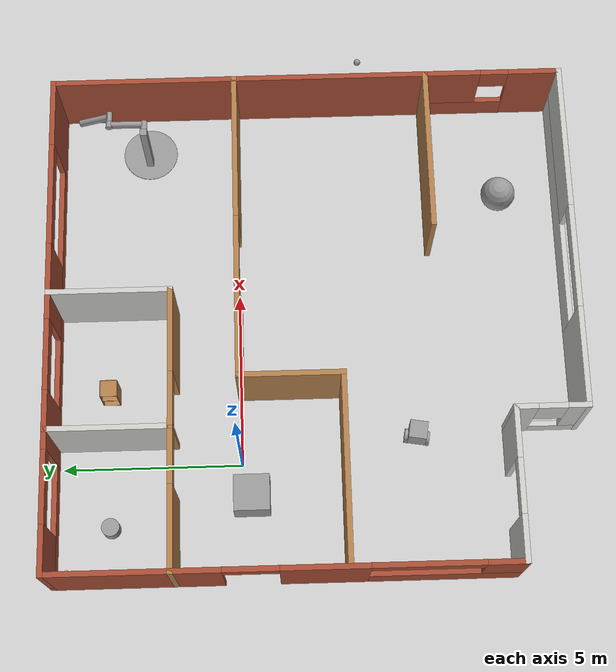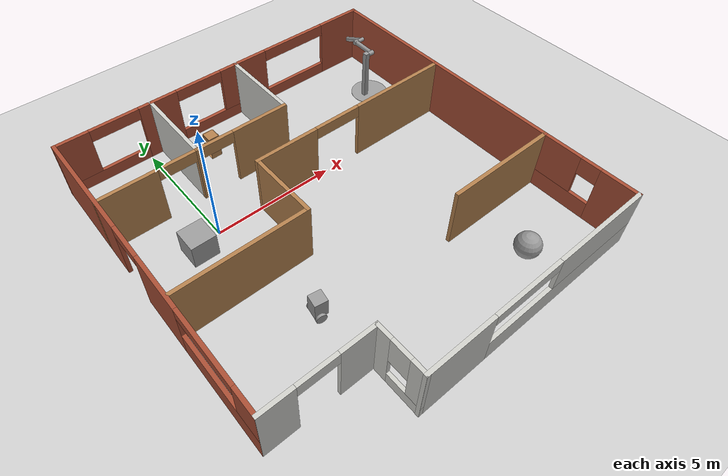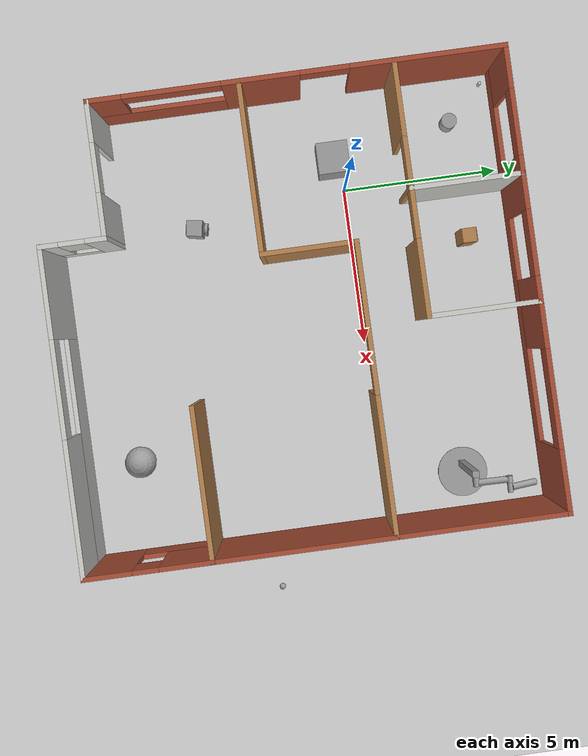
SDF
<sdf version="1.6">
 <world name="default">
  <plugin name="hello" filename="libhello.so"/>
  <light name="sun" type="directional">
   <pose>0 0 10 0 -0 0</pose>
   <diffuse>0.8 0.8 0.8 1</diffuse>
   <specular>0.1 0.1 0.1 1</specular>
   <attenuation>
    <range>1000</range>
    <constant>0.9</constant>
    <linear>0.01</linear>
    <quadratic>0.001</quadratic>
   </attenuation>
   <direction>-0.5 0.5 -1</direction>
  </light>
  <model name="ground_plane">
   <static>1</static>
   <link name="link">
    <collision name="collision">
     <geometry><plane><normal>0 0 1</normal><size>100 100</size></plane></geometry>
     <surface><friction><ode><mu>100</mu><mu2>50</mu2></ode></friction></surface>
    </collision>
    <visual name="visual">
     <cast_shadows>0</cast_shadows>
     <geometry><plane><normal>0 0 1</normal><size>100 100</size></plane></geometry>
     <material>
      <script><uri>file://media/materials/scripts/gazebo.material</uri><name>Gazebo/Grey</name></script>
     </material>
    </visual>
   </link>
  </model>
  <gravity>0 0 -9.8</gravity>
  <magnetic_field>6e-06 2.3e-05 -4.2e-05</magnetic_field>
  <atmosphere type="adiabatic"/>
  <physics name="default_physics" default="0" type="ode">
   <max_step_size>0.001</max_step_size>
   <real_time_factor>1</real_time_factor>
   <real_time_update_rate>1000</real_time_update_rate>
  </physics>
  <scene><ambient>0.4 0.4 0.4 1</ambient><background>0.7 0.7 0.7 1</background><shadows>1</shadows></scene>
  <spherical_coordinates>
   <surface_model>EARTH_WGS84</surface_model>
   <latitude_deg>0</latitude_deg>
   <longitude_deg>0</longitude_deg>
   <elevation>0</elevation>
   <heading_deg>0</heading_deg>
  </spherical_coordinates>
  <model name="mybuilding">
   <pose>3.78931 -2.0956 0 0 -0 0</pose>
   <link name="Wall_100">
    <pose>-4.97405 -5.32475 0 0 -0 0</pose>
    <visual name="Wall_100_Visual_0">
     <pose>-1.47284 0 1.25 0 -0 0</pose>
     <geometry><box><size>1.30431 0.15 2.5</size></box></geometry>
     <material>
      <script><uri>file://media/materials/scripts/gazebo.material</uri><name>Gazebo/CeilingTiled</name></script>
      <ambient>0.435294 0.796078 0.67451 1</ambient>
     </material>
    </visual>
    <collision name="Wall_100_Collision_0">
     <geometry><box><size>1.30431 0.15 2.5</size></box></geometry>
     <pose>-1.47284 0 1.25 0 -0 0</pose>
    </collision>
    <visual name="Wall_100_Visual_1">
     <pose>1.40216 0 1.25 0 -0 0</pose>
     <geometry><box><size>1.44569 0.15 2.5</size></box></geometry>
     <material>
      <script><uri>file://media/materials/scripts/gazebo.material</uri><name>Gazebo/CeilingTiled</name></script>
      <ambient>0.435294 0.796078 0.67451 1</ambient>
     </material>
    </visual>
    <collision name="Wall_100_Collision_1">
     <geometry><box><size>1.44569 0.15 2.5</size></box></geometry>
     <pose>1.40216 0 1.25 0 -0 0</pose>
    </collision>
    <visual name="Wall_100_Visual_2">
     <pose>-0.07069 0 2.25 0 -0 0</pose>
     <geometry><box><size>1.5 0.15 0.5</size></box></geometry>
     <material>
      <script><uri>file://media/materials/scripts/gazebo.material</uri><name>Gazebo/CeilingTiled</name></script>
      <ambient>0.435294 0.796078 0.67451 1</ambient>
     </material>
    </visual>
    <collision name="Wall_100_Collision_2">
     <geometry><box><size>1.5 0.15 0.5</size></box></geometry>
     <pose>-0.07069 0 2.25 0 -0 0</pose>
    </collision>
   </link>
   <link name="Wall_102">
    <pose>-2.91535 -6.30192 0 0 0 -1.5708</pose>
    <visual name="Wall_102_Visual_0">
     <pose>-0.715877 0 1.25 0 -0 0</pose>
     <geometry><box><size>0.672904 0.15 2.5</size></box></geometry>
     <material>
      <script><uri>file://media/materials/scripts/gazebo.material</uri><name>Gazebo/CeilingTiled</name></script>
      <ambient>1 0.764706 0.305882 1</ambient>
     </material>
    </visual>
    <collision name="Wall_102_Collision_0">
     <geometry><box><size>0.672904 0.15 2.5</size></box></geometry>
     <pose>-0.715877 0 1.25 0 -0 0</pose>
    </collision>
    <visual name="Wall_102_Visual_1">
     <pose>0.336452 0 0.25 0 -0 0</pose>
     <geometry><box><size>1.43175 0.15 0.5</size></box></geometry>
     <material>
      <script><uri>file://media/materials/scripts/gazebo.material</uri><name>Gazebo/CeilingTiled</name></script>
      <ambient>1 0.764706 0.305882 1</ambient>
     </material>
    </visual>
    <collision name="Wall_102_Collision_1">
     <geometry><box><size>1.43175 0.15 0.5</size></box></geometry>
     <pose>0.336452 0 0.25 0 -0 0</pose>
    </collision>
    <visual name="Wall_102_Visual_2">
     <pose>0.736452 0 1.5 0 -0 0</pose>
     <geometry><box><size>0.631753 0.15 2</size></box></geometry>
     <material>
      <script><uri>file://media/materials/scripts/gazebo.material</uri><name>Gazebo/CeilingTiled</name></script>
      <ambient>1 0.764706 0.305882 1</ambient>
     </material>
    </visual>
    <collision name="Wall_102_Collision_2">
     <geometry><box><size>0.631753 0.15 2</size></box></geometry>
     <pose>0.736452 0 1.5 0 -0 0</pose>
    </collision>
    <visual name="Wall_102_Visual_3">
     <pose>0.020576 0 1.9 0 -0 0</pose>
     <geometry><box><size>0.8 0.15 1.2</size></box></geometry>
     <material>
      <script><uri>file://media/materials/scripts/gazebo.material</uri><name>Gazebo/CeilingTiled</name></script>
      <ambient>1 0.764706 0.305882 1</ambient>
     </material>
    </visual>
    <collision name="Wall_102_Collision_3">
     <geometry><box><size>0.8 0.15 1.2</size></box></geometry>
     <pose>0.020576 0 1.9 0 -0 0</pose>
    </collision>
   </link>
   <link name="Wall_104">
    <pose>2.05282 -7.27925 0 0 0 -3.1e-05</pose>
    <visual name="Wall_104_Visual_0">
     <pose>-3.62649 0 1.25 0 -0 0</pose>
     <geometry><box><size>2.85075 0.15 2.5</size></box></geometry>
     <material>
      <script><uri>file://media/materials/scripts/gazebo.material</uri><name>Gazebo/CeilingTiled</name></script>
      <ambient>0.435294 0.796078 0.67451 1</ambient>
     </material>
    </visual>
    <collision name="Wall_104_Collision_0">
     <geometry><box><size>2.85075 0.15 2.5</size></box></geometry>
     <pose>-3.62649 0 1.25 0 -0 0</pose>
    </collision>
    <visual name="Wall_104_Visual_1">
     <pose>1.42538 0 0.5 0 -0 0</pose>
     <geometry><box><size>7.25299 0.15 1</size></box></geometry>
     <material>
      <script><uri>file://media/materials/scripts/gazebo.material</uri><name>Gazebo/CeilingTiled</name></script>
      <ambient>0.435294 0.796078 0.67451 1</ambient>
     </material>
    </visual>
    <collision name="Wall_104_Collision_1">
     <geometry><box><size>7.25299 0.15 1</size></box></geometry>
     <pose>1.42538 0 0.5 0 -0 0</pose>
    </collision>
    <visual name="Wall_104_Visual_2">
     <pose>2.92537 0 1.75 0 -0 0</pose>
     <geometry><box><size>4.25299 0.15 1.5</size></box></geometry>
     <material>
      <script><uri>file://media/materials/scripts/gazebo.material</uri><name>Gazebo/CeilingTiled</name></script>
      <ambient>0.435294 0.796078 0.67451 1</ambient>
     </material>
    </visual>
    <collision name="Wall_104_Collision_2">
     <geometry><box><size>4.25299 0.15 1.5</size></box></geometry>
     <pose>2.92537 0 1.75 0 -0 0</pose>
    </collision>
    <visual name="Wall_104_Visual_3">
     <pose>-0.70112 0 2.25 0 -0 0</pose>
     <geometry><box><size>3 0.15 0.5</size></box></geometry>
     <material>
      <script><uri>file://media/materials/scripts/gazebo.material</uri><name>Gazebo/CeilingTiled</name></script>
      <ambient>0.435294 0.796078 0.67451 1</ambient>
     </material>
    </visual>
    <collision name="Wall_104_Collision_3">
     <geometry><box><size>3 0.15 0.5</size></box></geometry>
     <pose>-0.70112 0 2.25 0 -0 0</pose>
    </collision>
   </link>
   <link name="Wall_106">
    <pose>7.02969 -5.3499 0 0 -0 1.5708</pose>
    <visual name="Wall_106_Visual_0">
     <pose>-1.23742 0 1.25 0 -0 0</pose>
     <geometry><box><size>1.53383 0.15 2.5</size></box></geometry>
     <material>
      <script><uri>file://media/materials/scripts/gazebo.material</uri><name>Gazebo/Bricks</name></script>
      <ambient>1 1 1 1</ambient>
     </material>
    </visual>
    <collision name="Wall_106_Collision_0">
     <geometry><box><size>1.53383 0.15 2.5</size></box></geometry>
     <pose>-1.23742 0 1.25 0 -0 0</pose>
    </collision>
    <visual name="Wall_106_Visual_1">
     <pose>0.766915 0 0.375 0 -0 0</pose>
     <geometry><box><size>2.47484 0.15 0.75</size></box></geometry>
     <material>
      <script><uri>file://media/materials/scripts/gazebo.material</uri><name>Gazebo/Bricks</name></script>
      <ambient>1 1 1 1</ambient>
     </material>
    </visual>
    <collision name="Wall_106_Collision_1">
     <geometry><box><size>2.47484 0.15 0.75</size></box></geometry>
     <pose>0.766915 0 0.375 0 -0 0</pose>
    </collision>
    <visual name="Wall_106_Visual_2">
     <pose>1.16691 0 1.625 0 -0 0</pose>
     <geometry><box><size>1.67484 0.15 1.75</size></box></geometry>
     <material>
      <script><uri>file://media/materials/scripts/gazebo.material</uri><name>Gazebo/Bricks</name></script>
      <ambient>1 1 1 1</ambient>
     </material>
    </visual>
    <collision name="Wall_106_Collision_2">
     <geometry><box><size>1.67484 0.15 1.75</size></box></geometry>
     <pose>1.16691 0 1.625 0 -0 0</pose>
    </collision>
    <visual name="Wall_106_Visual_3">
     <pose>-0.070504 0 2.125 0 -0 0</pose>
     <geometry><box><size>0.8 0.15 0.75</size></box></geometry>
     <material>
      <script><uri>file://media/materials/scripts/gazebo.material</uri><name>Gazebo/Bricks</name></script>
      <ambient>1 1 1 1</ambient>
     </material>
    </visual>
    <collision name="Wall_106_Collision_3">
     <geometry><box><size>0.8 0.15 0.75</size></box></geometry>
     <pose>-0.070504 0 2.125 0 -0 0</pose>
    </collision>
   </link>
   <link name="Wall_108">
    <collision name="Wall_108_Collision">
     <geometry><box><size>4.75 0.15 2.5</size></box></geometry>
     <pose>0 0 1.25 0 -0 0</pose>
    </collision>
    <visual name="Wall_108_Visual">
     <pose>0 0 1.25 0 -0 0</pose>
     <geometry><box><size>4.75 0.15 2.5</size></box></geometry>
     <material>
      <script><uri>file://media/materials/scripts/gazebo.material</uri><name>Gazebo/Wood</name></script>
      <ambient>1 1 0.498039 1</ambient>
     </material>
    </visual>
    <pose>4.72945 -3.42056 0 0 0 -3.14152</pose>
   </link>
   <link name="Wall_110">
    <collision name="Wall_110_Collision">
     <geometry><box><size>5.666 0.15 2.5</size></box></geometry>
     <pose>0 0 1.25 0 -0 0</pose>
    </collision>
    <visual name="Wall_110_Visual">
     <pose>0 0 1.25 0 -0 0</pose>
     <geometry><box><size>5.666 0.15 2.5</size></box></geometry>
     <material>
      <script><uri>file://media/materials/scripts/gazebo.material</uri><name>Gazebo/Bricks</name></script>
      <ambient>1 1 1 1</ambient>
     </material>
    </visual>
    <pose>7.02969 -0.662398 0 0 -0 1.5708</pose>
   </link>
   <link name="Wall_112">
    <pose>2.60469 2.0956 0 0 -0 3.14159</pose>
    <visual name="Wall_112_Visual_0">
     <pose>-2.34058 0 1.25 0 -0 0</pose>
     <geometry><box><size>4.31883 0.15 2.5</size></box></geometry>
     <material>
      <script><uri>file://media/materials/scripts/gazebo.material</uri><name>Gazebo/Wood</name></script>
      <ambient>1 1 0.498039 1</ambient>
     </material>
    </visual>
    <collision name="Wall_112_Collision_0">
     <geometry><box><size>4.31883 0.15 2.5</size></box></geometry>
     <pose>-2.34058 0 1.25 0 -0 0</pose>
    </collision>
    <visual name="Wall_112_Visual_1">
     <pose>3.15942 0 1.25 0 -0 0</pose>
     <geometry><box><size>2.68117 0.15 2.5</size></box></geometry>
     <material>
      <script><uri>file://media/materials/scripts/gazebo.material</uri><name>Gazebo/Wood</name></script>
      <ambient>1 1 0.498039 1</ambient>
     </material>
    </visual>
    <collision name="Wall_112_Collision_1">
     <geometry><box><size>2.68117 0.15 2.5</size></box></geometry>
     <pose>3.15942 0 1.25 0 -0 0</pose>
    </collision>
    <visual name="Wall_112_Visual_2">
     <pose>0.81883 0 2.25 0 -0 0</pose>
     <geometry><box><size>2 0.15 0.5</size></box></geometry>
     <material>
      <script><uri>file://media/materials/scripts/gazebo.material</uri><name>Gazebo/Wood</name></script>
      <ambient>1 1 0.498039 1</ambient>
     </material>
    </visual>
    <collision name="Wall_112_Collision_2">
     <geometry><box><size>2 0.15 0.5</size></box></geometry>
     <pose>0.81883 0 2.25 0 -0 0</pose>
    </collision>
   </link>
   <link name="Wall_114">
    <collision name="Wall_114_Collision">
     <geometry><box><size>5.33367 0.15 2.5</size></box></geometry>
     <pose>0 0 1.25 0 -0 0</pose>
    </collision>
    <visual name="Wall_114_Visual">
     <pose>0 0 1.25 0 -0 0</pose>
     <geometry><box><size>5.33367 0.15 2.5</size></box></geometry>
     <material>
      <script><uri>file://media/materials/scripts/gazebo.material</uri><name>Gazebo/Bricks</name></script>
      <ambient>1 1 1 1</ambient>
     </material>
    </visual>
    <pose>7.02493 4.68743 0 0 -0 1.57263</pose>
   </link>
   <link name="Wall_119">
    <pose>3.84517 7.27926 0 0 -0 3.14159</pose>
    <visual name="Wall_119_Visual_0">
     <pose>-2.25429 0 1.25 0 -0 0</pose>
     <geometry><box><size>1.99143 0.15 2.5</size></box></geometry>
     <material>
      <script><uri>file://media/materials/scripts/gazebo.material</uri><name>Gazebo/Bricks</name></script>
      <ambient>1 1 1 1</ambient>
     </material>
    </visual>
    <collision name="Wall_119_Collision_0">
     <geometry><box><size>1.99143 0.15 2.5</size></box></geometry>
     <pose>-2.25429 0 1.25 0 -0 0</pose>
    </collision>
    <visual name="Wall_119_Visual_1">
     <pose>0.995713 0 0.25 0 -0 0</pose>
     <geometry><box><size>4.50857 0.15 0.5</size></box></geometry>
     <material>
      <script><uri>file://media/materials/scripts/gazebo.material</uri><name>Gazebo/Bricks</name></script>
      <ambient>1 1 1 1</ambient>
     </material>
    </visual>
    <collision name="Wall_119_Collision_1">
     <geometry><box><size>4.50857 0.15 0.5</size></box></geometry>
     <pose>0.995713 0 0.25 0 -0 0</pose>
    </collision>
    <visual name="Wall_119_Visual_2">
     <pose>2.49571 0 1.5 0 -0 0</pose>
     <geometry><box><size>1.50857 0.15 2</size></box></geometry>
     <material>
      <script><uri>file://media/materials/scripts/gazebo.material</uri><name>Gazebo/Bricks</name></script>
      <ambient>1 1 1 1</ambient>
     </material>
    </visual>
    <collision name="Wall_119_Collision_2">
     <geometry><box><size>1.50857 0.15 2</size></box></geometry>
     <pose>2.49571 0 1.5 0 -0 0</pose>
    </collision>
    <visual name="Wall_119_Visual_3">
     <pose>0.241426 0 2.25 0 -0 0</pose>
     <geometry><box><size>3 0.15 0.5</size></box></geometry>
     <material>
      <script><uri>file://media/materials/scripts/gazebo.material</uri><name>Gazebo/Bricks</name></script>
      <ambient>1 1 1 1</ambient>
     </material>
    </visual>
    <collision name="Wall_119_Collision_3">
     <geometry><box><size>3 0.15 0.5</size></box></geometry>
     <pose>0.241426 0 2.25 0 -0 0</pose>
    </collision>
   </link>
   <link name="Wall_121">
    <collision name="Wall_121_Collision">
     <geometry><box><size>3.5 0.15 2.5</size></box></geometry>
     <pose>0 0 1.25 0 -0 0</pose>
    </collision>
    <visual name="Wall_121_Visual">
     <pose>0 0 1.25 0 -0 0</pose>
     <geometry><box><size>3.5 0.15 2.5</size></box></geometry>
     <material>
      <script><uri>file://media/materials/scripts/gazebo.material</uri><name>Gazebo/CeilingTiled</name></script>
      <ambient>0.333333 0.333333 0.498039 1</ambient>
     </material>
    </visual>
    <pose>0.670175 5.60426 0 0 0 -1.5708</pose>
   </link>
   <link name="Wall_123">
    <pose>-1.25483 3.92926 0 0 -0 3.14159</pose>
    <visual name="Wall_123_Visual_0">
     <pose>-0.793117 0 1.25 0 -0 0</pose>
     <geometry><box><size>2.41377 0.15 2.5</size></box></geometry>
     <material>
      <script><uri>file://media/materials/scripts/gazebo.material</uri><name>Gazebo/Wood</name></script>
      <ambient>1 1 1 1</ambient>
     </material>
    </visual>
    <collision name="Wall_123_Collision_0">
     <geometry><box><size>2.41377 0.15 2.5</size></box></geometry>
     <pose>-0.793117 0 1.25 0 -0 0</pose>
    </collision>
    <visual name="Wall_123_Visual_1">
     <pose>1.95688 0 1.25 0 -0 0</pose>
     <geometry><box><size>0.086235 0.15 2.5</size></box></geometry>
     <material>
      <script><uri>file://media/materials/scripts/gazebo.material</uri><name>Gazebo/Wood</name></script>
      <ambient>1 1 1 1</ambient>
     </material>
    </visual>
    <collision name="Wall_123_Collision_1">
     <geometry><box><size>0.086235 0.15 2.5</size></box></geometry>
     <pose>1.95688 0 1.25 0 -0 0</pose>
    </collision>
    <visual name="Wall_123_Visual_2">
     <pose>1.16376 0 2.25 0 -0 0</pose>
     <geometry><box><size>1.5 0.15 0.5</size></box></geometry>
     <material>
      <script><uri>file://media/materials/scripts/gazebo.material</uri><name>Gazebo/Wood</name></script>
      <ambient>1 1 1 1</ambient>
     </material>
    </visual>
    <collision name="Wall_123_Collision_2">
     <geometry><box><size>1.5 0.15 0.5</size></box></geometry>
     <pose>1.16376 0 2.25 0 -0 0</pose>
    </collision>
   </link>
   <link name="Wall_124">
    <collision name="Wall_124_Collision">
     <geometry><box><size>3.5 0.15 2.5</size></box></geometry>
     <pose>0 0 1.25 0 -0 0</pose>
    </collision>
    <visual name="Wall_124_Visual">
     <pose>0 0 1.25 0 -0 0</pose>
     <geometry><box><size>3.5 0.15 2.5</size></box></geometry>
     <material>
      <script><uri>file://media/materials/scripts/gazebo.material</uri><name>Gazebo/CeilingTiled</name></script>
      <ambient>0.333333 0.333333 0.498039 1</ambient>
     </material>
    </visual>
    <pose>-3.17983 5.60426 0 0 -0 1.5708</pose>
   </link>
   <link name="Wall_125">
    <pose>-1.25483 7.27926 0 0 -0 0</pose>
    <visual name="Wall_125_Visual_0">
     <pose>-1.41847 0 1.25 0 -0 0</pose>
     <geometry><box><size>1.16306 0.15 2.5</size></box></geometry>
     <material>
      <script><uri>file://media/materials/scripts/gazebo.material</uri><name>Gazebo/Bricks</name></script>
      <ambient>1 1 1 1</ambient>
     </material>
    </visual>
    <collision name="Wall_125_Collision_0">
     <geometry><box><size>1.16306 0.15 2.5</size></box></geometry>
     <pose>-1.41847 0 1.25 0 -0 0</pose>
    </collision>
    <visual name="Wall_125_Visual_1">
     <pose>0.581531 0 0.25 0 -0 0</pose>
     <geometry><box><size>2.83694 0.15 0.5</size></box></geometry>
     <material>
      <script><uri>file://media/materials/scripts/gazebo.material</uri><name>Gazebo/Bricks</name></script>
      <ambient>1 1 1 1</ambient>
     </material>
    </visual>
    <collision name="Wall_125_Collision_1">
     <geometry><box><size>2.83694 0.15 0.5</size></box></geometry>
     <pose>0.581531 0 0.25 0 -0 0</pose>
    </collision>
    <visual name="Wall_125_Visual_2">
     <pose>1.58153 0 1.5 0 -0 0</pose>
     <geometry><box><size>0.836939 0.15 2</size></box></geometry>
     <material>
      <script><uri>file://media/materials/scripts/gazebo.material</uri><name>Gazebo/Bricks</name></script>
      <ambient>1 1 1 1</ambient>
     </material>
    </visual>
    <collision name="Wall_125_Collision_2">
     <geometry><box><size>0.836939 0.15 2</size></box></geometry>
     <pose>1.58153 0 1.5 0 -0 0</pose>
    </collision>
    <visual name="Wall_125_Visual_3">
     <pose>0.163061 0 2.25 0 -0 0</pose>
     <geometry><box><size>2 0.15 0.5</size></box></geometry>
     <material>
      <script><uri>file://media/materials/scripts/gazebo.material</uri><name>Gazebo/Bricks</name></script>
      <ambient>1 1 1 1</ambient>
     </material>
    </visual>
    <collision name="Wall_125_Collision_3">
     <geometry><box><size>2 0.15 0.5</size></box></geometry>
     <pose>0.163061 0 2.25 0 -0 0</pose>
    </collision>
   </link>
   <link name="Wall_127">
    <pose>-5.10482 7.27926 0 0 -0 3.14159</pose>
    <visual name="Wall_127_Visual_0">
     <pose>-1.69078 0 1.25 0 -0 0</pose>
     <geometry><box><size>0.618444 0.15 2.5</size></box></geometry>
     <material>
      <script><uri>file://media/materials/scripts/gazebo.material</uri><name>Gazebo/Bricks</name></script>
      <ambient>1 1 1 1</ambient>
     </material>
    </visual>
    <collision name="Wall_127_Collision_0">
     <geometry><box><size>0.618444 0.15 2.5</size></box></geometry>
     <pose>-1.69078 0 1.25 0 -0 0</pose>
    </collision>
    <visual name="Wall_127_Visual_1">
     <pose>0.309222 0 0.25 0 -0 0</pose>
     <geometry><box><size>3.38156 0.15 0.5</size></box></geometry>
     <material>
      <script><uri>file://media/materials/scripts/gazebo.material</uri><name>Gazebo/Bricks</name></script>
      <ambient>1 1 1 1</ambient>
     </material>
    </visual>
    <collision name="Wall_127_Collision_1">
     <geometry><box><size>3.38156 0.15 0.5</size></box></geometry>
     <pose>0.309222 0 0.25 0 -0 0</pose>
    </collision>
    <visual name="Wall_127_Visual_2">
     <pose>1.30922 0 1.5 0 -0 0</pose>
     <geometry><box><size>1.38156 0.15 2</size></box></geometry>
     <material>
      <script><uri>file://media/materials/scripts/gazebo.material</uri><name>Gazebo/Bricks</name></script>
      <ambient>1 1 1 1</ambient>
     </material>
    </visual>
    <collision name="Wall_127_Collision_2">
     <geometry><box><size>1.38156 0.15 2</size></box></geometry>
     <pose>1.30922 0 1.5 0 -0 0</pose>
    </collision>
    <visual name="Wall_127_Visual_3">
     <pose>-0.381556 0 2.25 0 -0 0</pose>
     <geometry><box><size>2 0.15 0.5</size></box></geometry>
     <material>
      <script><uri>file://media/materials/scripts/gazebo.material</uri><name>Gazebo/Bricks</name></script>
      <ambient>1 1 1 1</ambient>
     </material>
    </visual>
    <collision name="Wall_127_Collision_3">
     <geometry><box><size>2 0.15 0.5</size></box></geometry>
     <pose>-0.381556 0 2.25 0 -0 0</pose>
    </collision>
   </link>
   <link name="Wall_128">
    <pose>-7.02982 0.979263 0 0 0 -1.5708</pose>
    <visual name="Wall_128_Visual_0">
     <pose>-3.99417 0 1.25 0 -0 0</pose>
     <geometry><box><size>4.76166 0.15 2.5</size></box></geometry>
     <material>
      <script><uri>file://media/materials/scripts/gazebo.material</uri><name>Gazebo/Bricks</name></script>
      <ambient>1 1 1 1</ambient>
     </material>
    </visual>
    <collision name="Wall_128_Collision_0">
     <geometry><box><size>4.76166 0.15 2.5</size></box></geometry>
     <pose>-3.99417 0 1.25 0 -0 0</pose>
    </collision>
    <visual name="Wall_128_Visual_1">
     <pose>1.07472 0 1.25 0 -0 0</pose>
     <geometry><box><size>2.37612 0.15 2.5</size></box></geometry>
     <material>
      <script><uri>file://media/materials/scripts/gazebo.material</uri><name>Gazebo/Bricks</name></script>
      <ambient>1 1 1 1</ambient>
     </material>
    </visual>
    <collision name="Wall_128_Collision_1">
     <geometry><box><size>2.37612 0.15 2.5</size></box></geometry>
     <pose>1.07472 0 1.25 0 -0 0</pose>
    </collision>
    <visual name="Wall_128_Visual_2">
     <pose>4.31889 0 0.5 0 -0 0</pose>
     <geometry><box><size>4.11222 0.15 1</size></box></geometry>
     <material>
      <script><uri>file://media/materials/scripts/gazebo.material</uri><name>Gazebo/Bricks</name></script>
      <ambient>1 1 1 1</ambient>
     </material>
    </visual>
    <collision name="Wall_128_Collision_2">
     <geometry><box><size>4.11222 0.15 1</size></box></geometry>
     <pose>4.31889 0 0.5 0 -0 0</pose>
    </collision>
    <visual name="Wall_128_Visual_3">
     <pose>5.81889 0 1.75 0 -0 0</pose>
     <geometry><box><size>1.11222 0.15 1.5</size></box></geometry>
     <material>
      <script><uri>file://media/materials/scripts/gazebo.material</uri><name>Gazebo/Bricks</name></script>
      <ambient>1 1 1 1</ambient>
     </material>
    </visual>
    <collision name="Wall_128_Collision_3">
     <geometry><box><size>1.11222 0.15 1.5</size></box></geometry>
     <pose>5.81889 0 1.75 0 -0 0</pose>
    </collision>
    <visual name="Wall_128_Visual_4">
     <pose>-0.863345 0 2.25 0 -0 0</pose>
     <geometry><box><size>1.5 0.15 0.5</size></box></geometry>
     <material>
      <script><uri>file://media/materials/scripts/gazebo.material</uri><name>Gazebo/Bricks</name></script>
      <ambient>1 1 1 1</ambient>
     </material>
    </visual>
    <collision name="Wall_128_Collision_4">
     <geometry><box><size>1.5 0.15 0.5</size></box></geometry>
     <pose>-0.863345 0 2.25 0 -0 0</pose>
    </collision>
    <visual name="Wall_128_Visual_5">
     <pose>3.76278 0 2.25 0 -0 0</pose>
     <geometry><box><size>3 0.15 0.5</size></box></geometry>
     <material>
      <script><uri>file://media/materials/scripts/gazebo.material</uri><name>Gazebo/Bricks</name></script>
      <ambient>1 1 1 1</ambient>
     </material>
    </visual>
    <collision name="Wall_128_Collision_5">
     <geometry><box><size>3 0.15 0.5</size></box></geometry>
     <pose>3.76278 0 2.25 0 -0 0</pose>
    </collision>
   </link>
   <link name="Wall_130">
    <pose>-5.10482 3.92926 0 0 -0 3.14159</pose>
    <visual name="Wall_130_Visual_0">
     <pose>-1.93168 0 1.25 0 -0 0</pose>
     <geometry><box><size>0.136646 0.15 2.5</size></box></geometry>
     <material>
      <script><uri>file://media/materials/scripts/gazebo.material</uri><name>Gazebo/Wood</name></script>
      <ambient>1 1 1 1</ambient>
     </material>
    </visual>
    <collision name="Wall_130_Collision_0">
     <geometry><box><size>0.136646 0.15 2.5</size></box></geometry>
     <pose>-1.93168 0 1.25 0 -0 0</pose>
    </collision>
    <visual name="Wall_130_Visual_1">
     <pose>0.818323 0 1.25 0 -0 0</pose>
     <geometry><box><size>2.36335 0.15 2.5</size></box></geometry>
     <material>
      <script><uri>file://media/materials/scripts/gazebo.material</uri><name>Gazebo/Wood</name></script>
      <ambient>1 1 1 1</ambient>
     </material>
    </visual>
    <collision name="Wall_130_Collision_1">
     <geometry><box><size>2.36335 0.15 2.5</size></box></geometry>
     <pose>0.818323 0 1.25 0 -0 0</pose>
    </collision>
    <visual name="Wall_130_Visual_2">
     <pose>-1.11335 0 2.25 0 -0 0</pose>
     <geometry><box><size>1.5 0.15 0.5</size></box></geometry>
     <material>
      <script><uri>file://media/materials/scripts/gazebo.material</uri><name>Gazebo/Wood</name></script>
      <ambient>1 1 1 1</ambient>
     </material>
    </visual>
    <collision name="Wall_130_Collision_2">
     <geometry><box><size>1.5 0.15 0.5</size></box></geometry>
     <pose>-1.11335 0 2.25 0 -0 0</pose>
    </collision>
   </link>
   <link name="Wall_132">
    <collision name="Wall_132_Collision">
     <geometry><box><size>3 0.15 2.5</size></box></geometry>
     <pose>0 0 1.25 0 -0 0</pose>
    </collision>
    <visual name="Wall_132_Visual">
     <pose>0 0 1.25 0 -0 0</pose>
     <geometry><box><size>3 0.15 2.5</size></box></geometry>
     <material>
      <script><uri>file://media/materials/scripts/gazebo.material</uri><name>Gazebo/Wood</name></script>
      <ambient>1 1 1 1</ambient>
     </material>
    </visual>
    <pose>-1.82031 0.670602 0 0 0 -1.5708</pose>
   </link>
   <link name="Wall_133">
    <collision name="Wall_133_Collision">
     <geometry><box><size>5.25 0.15 2.5</size></box></geometry>
     <pose>0 0 1.25 0 -0 0</pose>
    </collision>
    <visual name="Wall_133_Visual">
     <pose>0 0 1.25 0 -0 0</pose>
     <geometry><box><size>5.25 0.15 2.5</size></box></geometry>
     <material>
      <script><uri>file://media/materials/scripts/gazebo.material</uri><name>Gazebo/Wood</name></script>
      <ambient>1 1 1 1</ambient>
     </material>
    </visual>
    <pose>-4.37031 -0.754398 0 0 -0 3.14159</pose>
   </link>
   <static>1</static>
  </model>
  <model name="myrobot">
   <link name="link_0">
    <pose>0.0125 0 0.28125 0 -0 0</pose>
    <inertial>
     <mass>1</mass>
     <inertia>
      <ixx>0.166667</ixx>
      <ixy>0</ixy>
      <ixz>0</ixz>
      <iyy>0.166667</iyy>
      <iyz>0</iyz>
      <izz>0.166667</izz>
     </inertia>
    </inertial>
    <visual name="visual">
     <geometry><box><size>0.5 0.5 0.75</size></box></geometry>
     <material>
      <lighting>1</lighting>
      <script><uri>file://media/materials/scripts/gazebo.material</uri><name>Gazebo/Grey</name></script>
      <ambient>0.3 0.3 0.3 1</ambient>
      <diffuse>0.7 0.7 0.7 1</diffuse>
      <specular>0.01 0.01 0.01 1</specular>
      <emissive>0 0 0 1</emissive>
      <shader type="vertex"><normal_map>__default__</normal_map></shader>
     </material>
    </visual>
    <collision name="collision">
     <geometry><box><size>0.5 0.5 0.75</size></box></geometry>
     <surface>
      <friction>
       <ode><mu>1</mu><mu2>1</mu2><fdir1>0 0 0</fdir1><slip1>0</slip1><slip2>0</slip2></ode>
       <torsional>
        <coefficient>1</coefficient>
        <patch_radius>0</patch_radius>
        <surface_radius>0</surface_radius>
        <use_patch_radius>1</use_patch_radius>
        <ode><slip>0</slip></ode>
       </torsional>
      </friction>
      <bounce><restitution_coefficient>0</restitution_coefficient><threshold>1e+06</threshold></bounce>
      <contact>
       <collide_without_contact>0</collide_without_contact>
       <collide_without_contact_bitmask>1</collide_without_contact_bitmask>
       <collide_bitmask>1</collide_bitmask>
       <ode>
        <soft_cfm>0</soft_cfm>
        <soft_erp>0.2</soft_erp>
        <kp>1e+13</kp>
        <kd>1</kd>
        <max_vel>0.01</max_vel>
        <min_depth>0</min_depth>
       </ode>
       <bullet>
        <split_impulse>1</split_impulse>
        <split_impulse_penetration_threshold>-0.01</split_impulse_penetration_threshold>
        <soft_cfm>0</soft_cfm>
        <soft_erp>0.2</soft_erp>
        <kp>1e+13</kp>
        <kd>1</kd>
       </bullet>
      </contact>
     </surface>
    </collision>
   </link>
   <link name="link_1">
    <pose>-0.0375 0.300019 -0.09375 1.5707 -0 0</pose>
    <inertial>
     <mass>1</mass>
     <inertia><ixx>0.145833</ixx><ixy>0</ixy><ixz>0</ixz><iyy>0.145833</iyy><iyz>0</iyz><izz>0.125</izz></inertia>
    </inertial>
    <visual name="visual">
     <geometry><cylinder><radius>0.2</radius><length>0.1</length></cylinder></geometry>
     <material>
      <lighting>1</lighting>
      <script><uri>file://media/materials/scripts/gazebo.material</uri><name>Gazebo/Grey</name></script>
      <ambient>0.3 0.3 0.3 1</ambient>
      <diffuse>0.7 0.7 0.7 1</diffuse>
      <specular>0.01 0.01 0.01 1</specular>
      <emissive>0 0 0 1</emissive>
      <shader type="vertex"><normal_map>__default__</normal_map></shader>
     </material>
    </visual>
    <collision name="collision">
     <geometry><cylinder><radius>0.2</radius><length>0.1</length></cylinder></geometry>
     <surface>
      <friction>
       <ode><mu>1</mu><mu2>1</mu2><fdir1>0 0 0</fdir1><slip1>0</slip1><slip2>0</slip2></ode>
       <torsional>
        <coefficient>1</coefficient>
        <patch_radius>0</patch_radius>
        <surface_radius>0</surface_radius>
        <use_patch_radius>1</use_patch_radius>
        <ode><slip>0</slip></ode>
       </torsional>
      </friction>
      <bounce><restitution_coefficient>0</restitution_coefficient><threshold>1e+06</threshold></bounce>
      <contact>
       <collide_without_contact>0</collide_without_contact>
       <collide_without_contact_bitmask>1</collide_without_contact_bitmask>
       <collide_bitmask>1</collide_bitmask>
       <ode>
        <soft_cfm>0</soft_cfm>
        <soft_erp>0.2</soft_erp>
        <kp>1e+13</kp>
        <kd>1</kd>
        <max_vel>0.01</max_vel>
        <min_depth>0</min_depth>
       </ode>
       <bullet>
        <split_impulse>1</split_impulse>
        <split_impulse_penetration_threshold>-0.01</split_impulse_penetration_threshold>
        <soft_cfm>0</soft_cfm>
        <soft_erp>0.2</soft_erp>
        <kp>1e+13</kp>
        <kd>1</kd>
       </bullet>
      </contact>
     </surface>
    </collision>
   </link>
   <link name="link_1_clone">
    <pose>-0.0375 -0.300019 -0.09375 1.5707 -0 0</pose>
    <inertial>
     <mass>1</mass>
     <inertia><ixx>0.145833</ixx><ixy>0</ixy><ixz>0</ixz><iyy>0.145833</iyy><iyz>0</iyz><izz>0.125</izz></inertia>
    </inertial>
    <visual name="visual">
     <geometry><cylinder><radius>0.2</radius><length>0.1</length></cylinder></geometry>
     <material>
      <lighting>1</lighting>
      <script><uri>file://media/materials/scripts/gazebo.material</uri><name>Gazebo/Grey</name></script>
      <ambient>0.3 0.3 0.3 1</ambient>
      <diffuse>0.7 0.7 0.7 1</diffuse>
      <specular>0.01 0.01 0.01 1</specular>
      <emissive>0 0 0 1</emissive>
      <shader type="vertex"><normal_map>__default__</normal_map></shader>
     </material>
    </visual>
    <collision name="collision">
     <geometry><cylinder><radius>0.2</radius><length>0.1</length></cylinder></geometry>
     <surface>
      <friction>
       <ode><mu>1</mu><mu2>1</mu2><fdir1>0 0 0</fdir1><slip1>0</slip1><slip2>0</slip2></ode>
       <torsional>
        <coefficient>1</coefficient>
        <patch_radius>0</patch_radius>
        <surface_radius>0</surface_radius>
        <use_patch_radius>1</use_patch_radius>
        <ode><slip>0</slip></ode>
       </torsional>
      </friction>
      <bounce><restitution_coefficient>0</restitution_coefficient><threshold>1e+06</threshold></bounce>
      <contact>
       <collide_without_contact>0</collide_without_contact>
       <collide_without_contact_bitmask>1</collide_without_contact_bitmask>
       <collide_bitmask>1</collide_bitmask>
       <ode>
        <soft_cfm>0</soft_cfm>
        <soft_erp>0.2</soft_erp>
        <kp>1e+13</kp>
        <kd>1</kd>
        <max_vel>0.01</max_vel>
        <min_depth>0</min_depth>
       </ode>
       <bullet>
        <split_impulse>1</split_impulse>
        <split_impulse_penetration_threshold>-0.01</split_impulse_penetration_threshold>
        <soft_cfm>0</soft_cfm>
        <soft_erp>0.2</soft_erp>
        <kp>1e+13</kp>
        <kd>1</kd>
       </bullet>
      </contact>
     </surface>
    </collision>
   </link>
   <link name="link_2">
    <pose>0.0625 0 -0.09375 0 -0 0</pose>
    <inertial>
     <mass>1</mass>
     <inertia><ixx>0.1</ixx><ixy>0</ixy><ixz>0</ixz><iyy>0.1</iyy><iyz>0</iyz><izz>0.1</izz></inertia>
    </inertial>
    <visual name="visual">
     <geometry><sphere><radius>0.2</radius></sphere></geometry>
     <material>
      <lighting>1</lighting>
      <script><uri>file://media/materials/scripts/gazebo.material</uri><name>Gazebo/Grey</name></script>
      <ambient>0.3 0.3 0.3 1</ambient>
      <diffuse>0.7 0.7 0.7 1</diffuse>
      <specular>0.01 0.01 0.01 1</specular>
      <emissive>0 0 0 1</emissive>
      <shader type="vertex"><normal_map>__default__</normal_map></shader>
     </material>
    </visual>
    <collision name="collision">
     <geometry><sphere><radius>0.2</radius></sphere></geometry>
     <surface>
      <friction>
       <ode><mu>1</mu><mu2>1</mu2><fdir1>0 0 0</fdir1><slip1>0</slip1><slip2>0</slip2></ode>
       <torsional>
        <coefficient>1</coefficient>
        <patch_radius>0</patch_radius>
        <surface_radius>0</surface_radius>
        <use_patch_radius>1</use_patch_radius>
        <ode><slip>0</slip></ode>
       </torsional>
      </friction>
      <bounce><restitution_coefficient>0</restitution_coefficient><threshold>1e+06</threshold></bounce>
      <contact>
       <collide_without_contact>0</collide_without_contact>
       <collide_without_contact_bitmask>1</collide_without_contact_bitmask>
       <collide_bitmask>1</collide_bitmask>
       <ode>
        <soft_cfm>0</soft_cfm>
        <soft_erp>0.2</soft_erp>
        <kp>1e+13</kp>
        <kd>1</kd>
        <max_vel>0.01</max_vel>
        <min_depth>0</min_depth>
       </ode>
       <bullet>
        <split_impulse>1</split_impulse>
        <split_impulse_penetration_threshold>-0.01</split_impulse_penetration_threshold>
        <soft_cfm>0</soft_cfm>
        <soft_erp>0.2</soft_erp>
        <kp>1e+13</kp>
        <kd>1</kd>
       </bullet>
      </contact>
     </surface>
    </collision>
   </link>
   <joint name="link_0_JOINT_1" type="revolute">
    <parent>link_0</parent>
    <child>link_1</child>
    <axis>
     <xyz>0 0 1</xyz>
     <use_parent_model_frame>0</use_parent_model_frame>
     <limit>
      <lower>-1.79769e+308</lower>
      <upper>1.79769e+308</upper>
      <effort>-1</effort>
      <velocity>-1</velocity>
     </limit>
     <dynamics>
      <spring_reference>0</spring_reference>
      <spring_stiffness>0</spring_stiffness>
      <damping>0</damping>
     </dynamics>
    </axis>
    <physics>
     <ode><limit><cfm>0</cfm><erp>0.2</erp></limit><suspension><cfm>0</cfm><erp>0.2</erp></suspension></ode>
    </physics>
   </joint>
   <joint name="link_0_JOINT_2" type="revolute">
    <parent>link_0</parent>
    <child>link_1_clone</child>
    <axis>
     <xyz>1 0 0</xyz>
     <use_parent_model_frame>0</use_parent_model_frame>
     <limit>
      <lower>-1.79769e+308</lower>
      <upper>1.79769e+308</upper>
      <effort>-1</effort>
      <velocity>-1</velocity>
     </limit>
     <dynamics>
      <spring_reference>0</spring_reference>
      <spring_stiffness>0</spring_stiffness>
      <damping>0</damping>
     </dynamics>
    </axis>
    <physics>
     <ode><limit><cfm>0</cfm><erp>0.2</erp></limit><suspension><cfm>0</cfm><erp>0.2</erp></suspension></ode>
    </physics>
   </joint>
   <joint name="link_0_JOINT_3" type="ball">
    <parent>link_0</parent>
    <child>link_2</child>
    <physics>
     <ode><limit><cfm>0</cfm><erp>0.2</erp></limit><suspension><cfm>0</cfm><erp>0.2</erp></suspension></ode>
    </physics>
   </joint>
   <static>0</static>
   <pose>0.684335 -4.91261 0.293752 2e-06 5.2e-05 -0.163222</pose>
  </model>
  <model name="my_ball">
   <link name="link_0">
    <inertial>
     <mass>1</mass>
     <inertia><ixx>0.1</ixx><ixy>0</ixy><ixz>0</ixz><iyy>0.1</iyy><iyz>0</iyz><izz>0.1</izz></inertia>
    </inertial>
    <visual name="visual">
     <geometry><sphere><radius>0.1</radius></sphere></geometry>
     <material>
      <lighting>1</lighting>
      <script><uri>file://media/materials/scripts/gazebo.material</uri><name>Gazebo/Grey</name></script>
      <ambient>1 1 1 1</ambient>
      <diffuse>1 1 1 1</diffuse>
      <specular>1 1 1 1</specular>
      <emissive>1 1 1 1</emissive>
      <shader type="vertex"><normal_map>__default__</normal_map></shader>
     </material>
    </visual>
    <collision name="collision">
     <geometry><sphere><radius>0.1</radius></sphere></geometry>
     <surface>
      <friction>
       <ode><mu>1</mu><mu2>1</mu2><fdir1>0 0 0</fdir1><slip1>0</slip1><slip2>0</slip2></ode>
       <torsional>
        <coefficient>1</coefficient>
        <patch_radius>0</patch_radius>
        <surface_radius>0</surface_radius>
        <use_patch_radius>1</use_patch_radius>
        <ode><slip>0</slip></ode>
       </torsional>
      </friction>
      <bounce><restitution_coefficient>0</restitution_coefficient><threshold>1e+06</threshold></bounce>
      <contact>
       <collide_without_contact>0</collide_without_contact>
       <collide_without_contact_bitmask>1</collide_without_contact_bitmask>
       <collide_bitmask>1</collide_bitmask>
       <ode>
        <soft_cfm>0</soft_cfm>
        <soft_erp>0.2</soft_erp>
        <kp>1e+13</kp>
        <kd>1</kd>
        <max_vel>0.01</max_vel>
        <min_depth>0</min_depth>
       </ode>
       <bullet>
        <split_impulse>1</split_impulse>
        <split_impulse_penetration_threshold>-0.01</split_impulse_penetration_threshold>
        <soft_cfm>0</soft_cfm>
        <soft_erp>0.2</soft_erp>
        <kp>1e+13</kp>
        <kd>1</kd>
       </bullet>
      </contact>
     </surface>
    </collision>
   </link>
   <static>0</static>
   <pose>12.5143 -3.70421 0.1 0 -0 0</pose>
  </model>
  <model name="cabinet_0">
   <static>1</static>
   <link name="cabinet_bottom_plate">
    <inertial>
     <pose>0 0 -1 0 -0 0</pose>
     <inertia><ixx>2.05</ixx><ixy>0</ixy><ixz>0</ixz><iyy>2.05</iyy><iyz>0</iyz><izz>2.05</izz></inertia>
     <mass>25</mass>
    </inertial>
    <collision name="cabinet_bottom_plate_geom">
     <pose>0 0 0.01 0 -0 0</pose>
     <geometry><box><size>0.45 0.45 0.02</size></box></geometry>
    </collision>
    <visual name="cabinet_bottom_plate_geom_visual">
     <pose>0 0 0.01 0 -0 0</pose>
     <geometry><box><size>0.45 0.45 0.02</size></box></geometry>
     <material>
      <script><uri>file://media/materials/scripts/gazebo.material</uri><name>Gazebo/Wood</name></script>
     </material>
    </visual>
    <collision name="cabinet_bottom_plate_geom_cabinet_back_plate">
     <pose>0.235 0 0.51 0 -0 0</pose>
     <geometry><box><size>0.02 0.45 1.02</size></box></geometry>
    </collision>
    <visual name="cabinet_bottom_plate_geom_cabinet_back_plate_visual">
     <pose>0.235 0 0.51 0 -0 0</pose>
     <geometry><box><size>0.02 0.45 1.02</size></box></geometry>
     <material>
      <script><uri>file://media/materials/scripts/gazebo.material</uri><name>Gazebo/Wood</name></script>
     </material>
    </visual>
    <collision name="cabinet_bottom_plate_geom_cabinet_left_plate">
     <pose>0 0.235 0.51 0 -0 0</pose>
     <geometry><box><size>0.45 0.02 1.02</size></box></geometry>
    </collision>
    <visual name="cabinet_bottom_plate_geom_cabinet_left_plate_visual">
     <pose>0 0.235 0.51 0 -0 0</pose>
     <geometry><box><size>0.45 0.02 1.02</size></box></geometry>
     <material>
      <script><uri>file://media/materials/scripts/gazebo.material</uri><name>Gazebo/Wood</name></script>
     </material>
    </visual>
    <collision name="cabinet_bottom_plate_geom_cabinet_middle_plate">
     <pose>0 0 0.51 0 -0 0</pose>
     <geometry><box><size>0.45 0.45 0.02</size></box></geometry>
    </collision>
    <visual name="cabinet_bottom_plate_geom_cabinet_middle_plate_visual">
     <pose>0 0 0.51 0 -0 0</pose>
     <geometry><box><size>0.45 0.45 0.02</size></box></geometry>
     <material>
      <script><uri>file://media/materials/scripts/gazebo.material</uri><name>Gazebo/Wood</name></script>
     </material>
    </visual>
    <collision name="cabinet_bottom_plate_geom_cabinet_right_plate">
     <pose>0 -0.235 0.51 0 -0 0</pose>
     <geometry><box><size>0.45 0.02 1.02</size></box></geometry>
    </collision>
    <visual name="cabinet_bottom_plate_geom_cabinet_right_plate_visual">
     <pose>0 -0.235 0.51 0 -0 0</pose>
     <geometry><box><size>0.45 0.02 1.02</size></box></geometry>
     <material>
      <script><uri>file://media/materials/scripts/gazebo.material</uri><name>Gazebo/Wood</name></script>
     </material>
    </visual>
    <collision name="cabinet_bottom_plate_geom_cabinet_top_plate">
     <pose>0 0 1.01 0 -0 0</pose>
     <geometry><box><size>0.45 0.45 0.02</size></box></geometry>
    </collision>
    <visual name="cabinet_bottom_plate_geom_cabinet_top_plate_visual">
     <pose>0 0 1.01 0 -0 0</pose>
     <geometry><box><size>0.45 0.45 0.02</size></box></geometry>
     <material>
      <script><uri>file://media/materials/scripts/gazebo.material</uri><name>Gazebo/Wood</name></script>
     </material>
    </visual>
   </link>
   <pose>2.08384 3.67014 0 0 -0 0</pose>
  </model>
  <model name="unit_sphere_0">
   <pose>7.85245 -7.65726 0.5 0 -0 0</pose>
   <link name="link">
    <inertial>
     <mass>1</mass>
     <inertia><ixx>0.1</ixx><ixy>0</ixy><ixz>0</ixz><iyy>0.1</iyy><iyz>0</iyz><izz>0.1</izz></inertia>
    </inertial>
    <collision name="collision"><geometry><sphere><radius>0.5</radius></sphere></geometry></collision>
    <visual name="visual">
     <geometry><sphere><radius>0.5</radius></sphere></geometry>
     <material>
      <script><name>Gazebo/Grey</name><uri>file://media/materials/scripts/gazebo.material</uri></script>
     </material>
    </visual>
   </link>
  </model>
  <model name="unit_box_0">
   <pose>-0.935753 -0.265761 0.499995 0 1e-05 0</pose>
   <link name="link">
    <inertial>
     <mass>1</mass>
     <inertia>
      <ixx>0.166667</ixx>
      <ixy>0</ixy>
      <ixz>0</ixz>
      <iyy>0.166667</iyy>
      <iyz>0</iyz>
      <izz>0.166667</izz>
     </inertia>
    </inertial>
    <collision name="collision"><geometry><box><size>1 1 1</size></box></geometry></collision>
    <visual name="visual">
     <geometry><box><size>1 1 1</size></box></geometry>
     <material>
      <script><name>Gazebo/Grey</name><uri>file://media/materials/scripts/gazebo.material</uri></script>
     </material>
    </visual>
   </link>
  </model>
  <model name="double_pendulum_with_base">
   <link name="base">
    <inertial>
     <mass>100</mass>
     <inertia><ixx>1</ixx><ixy>0</ixy><ixz>0</ixz><iyy>1</iyy><iyz>0</iyz><izz>1</izz></inertia>
    </inertial>
    <visual name="vis_plate_on_ground">
     <pose>0 0 0.01 0 -0 0</pose>
     <geometry><cylinder><radius>0.8</radius><length>0.02</length></cylinder></geometry>
     <material>
      <script><uri>file://media/materials/scripts/gazebo.material</uri><name>Gazebo/Grey</name></script>
     </material>
    </visual>
    <visual name="vis_pole">
     <pose>-0.275 0 1.1 0 -0 0</pose>
     <geometry><box><size>0.2 0.2 2.2</size></box></geometry>
     <material>
      <script><uri>file://media/materials/scripts/gazebo.material</uri><name>Gazebo/Grey</name></script>
     </material>
    </visual>
    <collision name="col_plate_on_ground">
     <pose>0 0 0.01 0 -0 0</pose>
     <geometry><cylinder><radius>0.8</radius><length>0.02</length></cylinder></geometry>
    </collision>
    <collision name="col_pole">
     <pose>-0.275 0 1.1 0 -0 0</pose>
     <geometry><box><size>0.2 0.2 2.2</size></box></geometry>
    </collision>
   </link>
   <link name="upper_link">
    <pose>0 0 2.1 -1.5708 0 0</pose>
    <inertial>
     <pose>0 0 0.5 0 -0 0</pose>
     <inertia><ixx>1</ixx><ixy>0</ixy><ixz>0</ixz><iyy>1</iyy><iyz>0</iyz><izz>1</izz></inertia>
     <mass>1</mass>
    </inertial>
    <visual name="vis_upper_joint">
     <pose>-0.05 0 0 3.14159 1.57079 3.14159</pose>
     <geometry><cylinder><radius>0.1</radius><length>0.3</length></cylinder></geometry>
     <material>
      <script><uri>file://media/materials/scripts/gazebo.material</uri><name>Gazebo/Grey</name></script>
     </material>
    </visual>
    <visual name="vis_lower_joint">
     <pose>0 0 1 3.14159 1.57079 3.14159</pose>
     <geometry><cylinder><radius>0.1</radius><length>0.2</length></cylinder></geometry>
     <material>
      <script><uri>file://media/materials/scripts/gazebo.material</uri><name>Gazebo/Grey</name></script>
     </material>
    </visual>
    <visual name="vis_cylinder">
     <pose>0 0 0.5 0 -0 0</pose>
     <geometry><cylinder><radius>0.1</radius><length>0.9</length></cylinder></geometry>
     <material>
      <script><uri>file://media/materials/scripts/gazebo.material</uri><name>Gazebo/Grey</name></script>
     </material>
    </visual>
    <collision name="col_upper_joint">
     <pose>-0.05 0 0 3.14159 1.57079 3.14159</pose>
     <geometry><cylinder><radius>0.1</radius><length>0.3</length></cylinder></geometry>
    </collision>
    <collision name="col_lower_joint">
     <pose>0 0 1 3.14159 1.57079 3.14159</pose>
     <geometry><cylinder><radius>0.1</radius><length>0.2</length></cylinder></geometry>
    </collision>
    <collision name="col_cylinder">
     <pose>0 0 0.5 0 -0 0</pose>
     <geometry><cylinder><radius>0.1</radius><length>0.9</length></cylinder></geometry>
    </collision>
   </link>
   <link name="lower_link">
    <pose>0.25 1 2.1 -2 0 0</pose>
    <inertial>
     <pose>0 0 0.5 0 -0 0</pose>
     <inertia><ixx>1</ixx><ixy>0</ixy><ixz>0</ixz><iyy>1</iyy><iyz>0</iyz><izz>1</izz></inertia>
     <mass>1</mass>
    </inertial>
    <visual name="vis_lower_joint">
     <pose>0 0 0 3.14159 1.57079 3.14159</pose>
     <geometry><cylinder><radius>0.08</radius><length>0.3</length></cylinder></geometry>
     <material>
      <script><uri>file://media/materials/scripts/gazebo.material</uri><name>Gazebo/Grey</name></script>
     </material>
    </visual>
    <visual name="vis_cylinder">
     <pose>0 0 0.5 0 -0 0</pose>
     <geometry><cylinder><radius>0.1</radius><length>0.9</length></cylinder></geometry>
     <material>
      <script><uri>file://media/materials/scripts/gazebo.material</uri><name>Gazebo/Grey</name></script>
     </material>
    </visual>
    <collision name="col_lower_joint">
     <pose>0 0 0 3.14159 1.57079 3.14159</pose>
     <geometry><cylinder><radius>0.08</radius><length>0.3</length></cylinder></geometry>
    </collision>
    <collision name="col_cylinder">
     <pose>0 0 0.5 0 -0 0</pose>
     <geometry><cylinder><radius>0.1</radius><length>0.9</length></cylinder></geometry>
    </collision>
   </link>
   <joint name="upper_joint" type="revolute">
    <parent>base</parent>
    <child>upper_link</child>
    <axis>
     <xyz>1 0 0</xyz>
     <use_parent_model_frame>1</use_parent_model_frame>
     <limit><lower>-1e+16</lower><upper>1e+16</upper></limit>
     <dynamics><spring_reference>0</spring_reference><spring_stiffness>0</spring_stiffness></dynamics>
    </axis>
   </joint>
   <joint name="lower_joint" type="revolute">
    <parent>upper_link</parent>
    <child>lower_link</child>
    <axis>
     <xyz>1 0 0</xyz>
     <use_parent_model_frame>1</use_parent_model_frame>
     <limit><lower>-1e+16</lower><upper>1e+16</upper></limit>
     <dynamics><spring_reference>0</spring_reference><spring_stiffness>0</spring_stiffness></dynamics>
    </axis>
   </joint>
   <pose>9.61979 2.61391 -2e-06 3e-06 1.4e-05 -0.016538</pose>
  </model>
  <model name="unit_cylinder_0_0">
   <link name="link">
    <inertial>
     <mass>1</mass>
     <inertia><ixx>0.145833</ixx><ixy>0</ixy><ixz>0</ixz><iyy>0.145833</iyy><iyz>0</iyz><izz>0.125</izz></inertia>
    </inertial>
    <visual name="visual">
     <geometry><cylinder><radius>0.25</radius><length>0.5</length></cylinder></geometry>
     <material>
      <script><name>Gazebo/Grey</name><uri>file://media/materials/scripts/gazebo.material</uri></script>
      <ambient>0.3 0.3 0.3 1</ambient>
      <diffuse>0.7 0.7 0.7 1</diffuse>
      <specular>0.01 0.01 0.01 1</specular>
      <emissive>0 0 0 1</emissive>
      <shader type="vertex"><normal_map>__default__</normal_map></shader>
     </material>
    </visual>
    <collision name="collision">
     <geometry><cylinder><radius>0.25</radius><length>0.5</length></cylinder></geometry>
     <surface>
      <friction>
       <ode><mu>1</mu><mu2>1</mu2><fdir1>0 0 0</fdir1><slip1>0</slip1><slip2>0</slip2></ode>
       <torsional>
        <coefficient>1</coefficient>
        <patch_radius>0</patch_radius>
        <surface_radius>0</surface_radius>
        <use_patch_radius>1</use_patch_radius>
        <ode><slip>0</slip></ode>
       </torsional>
      </friction>
      <bounce><restitution_coefficient>0</restitution_coefficient><threshold>1e+06</threshold></bounce>
      <contact>
       <collide_without_contact>0</collide_without_contact>
       <collide_without_contact_bitmask>1</collide_without_contact_bitmask>
       <collide_bitmask>1</collide_bitmask>
       <ode>
        <soft_cfm>0</soft_cfm>
        <soft_erp>0.2</soft_erp>
        <kp>1e+13</kp>
        <kd>1</kd>
        <max_vel>0.01</max_vel>
        <min_depth>0</min_depth>
       </ode>
       <bullet>
        <split_impulse>1</split_impulse>
        <split_impulse_penetration_threshold>-0.01</split_impulse_penetration_threshold>
        <soft_cfm>0</soft_cfm>
        <soft_erp>0.2</soft_erp>
        <kp>1e+13</kp>
        <kd>1</kd>
       </bullet>
      </contact>
     </surface>
    </collision>
   </link>
   <static>0</static>
   <pose>-1.70437 3.62965 0.249999 0 -0 0</pose>
  </model>
  <model name="beer">
   <link name="link">
    <pose>0 0 0.115 0 -0 0</pose>
    <inertial>
     <mass>0.39</mass>
     <inertia><ixx>0.00058</ixx><ixy>0</ixy><ixz>0</ixz><iyy>0.00058</iyy><iyz>0</iyz><izz>0.00019</izz></inertia>
    </inertial>
    <collision name="collision">
     <geometry><cylinder><radius>0.055</radius><length>0.23</length></cylinder></geometry>
    </collision>
    <visual name="visual">
     <geometry><cylinder><radius>0.055</radius><length>0.23</length></cylinder></geometry>
     <material>
      <script>
       <uri>model://beer/materials/scripts</uri>
       <uri>model://beer/materials/textures</uri>
       <name>Beer/Diffuse</name>
      </script>
     </material>
    </visual>
   </link>
   <pose>-2.85151 4.84104 -7e-06 0 0 -4e-06</pose>
  </model>
 </world>
</sdf>
